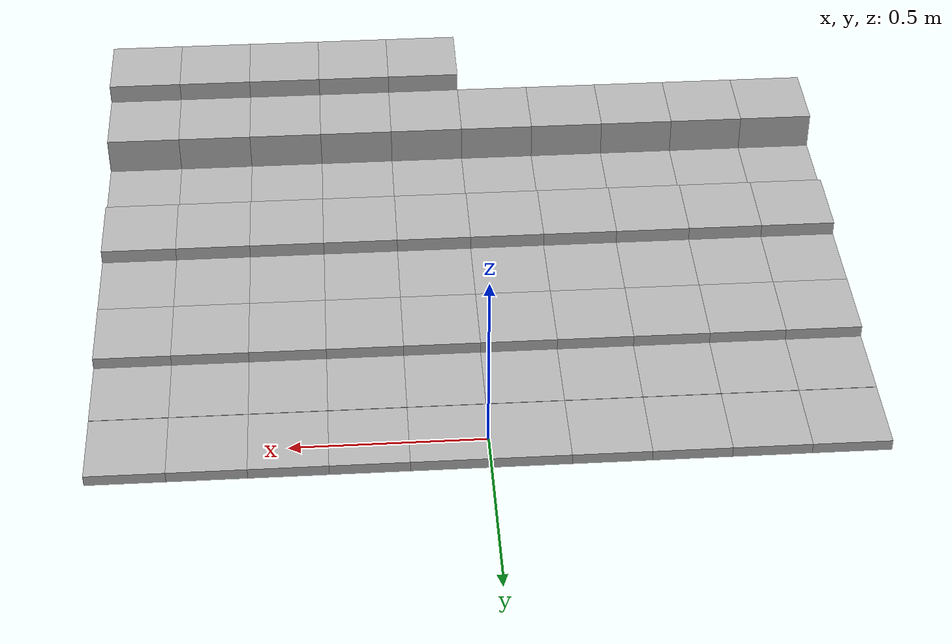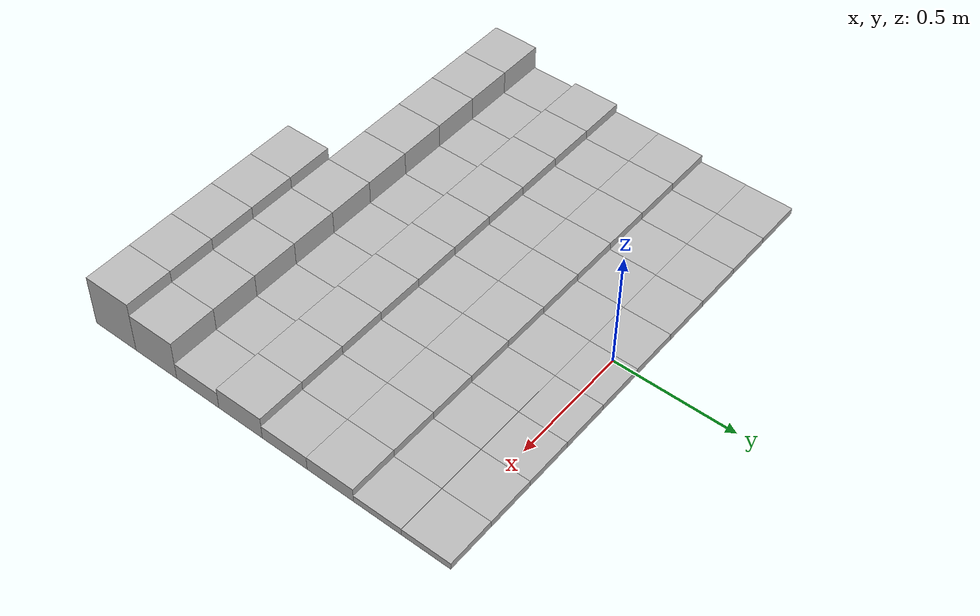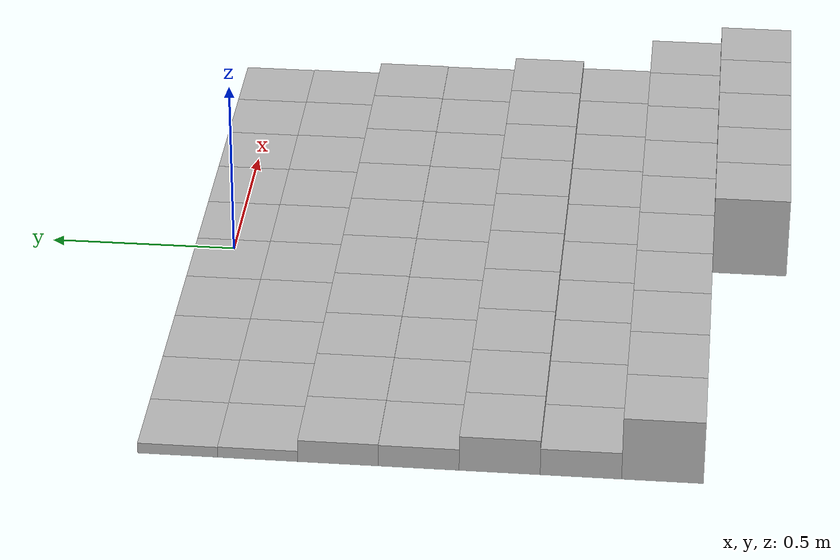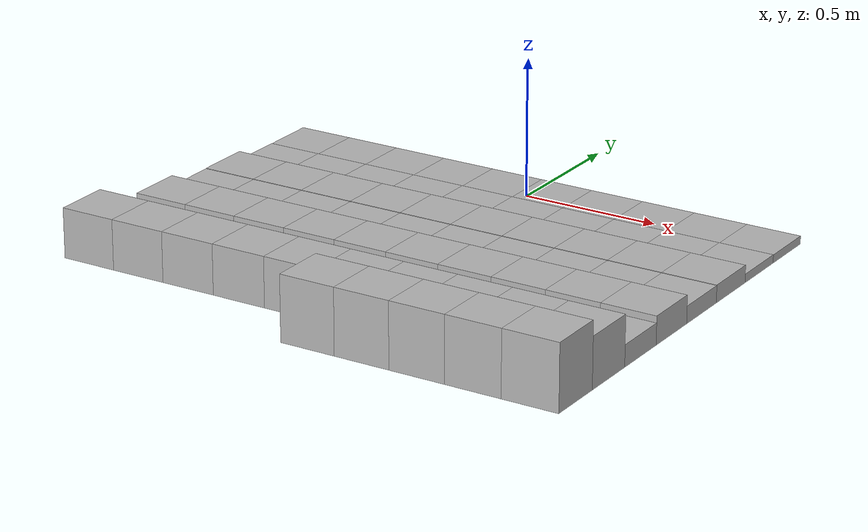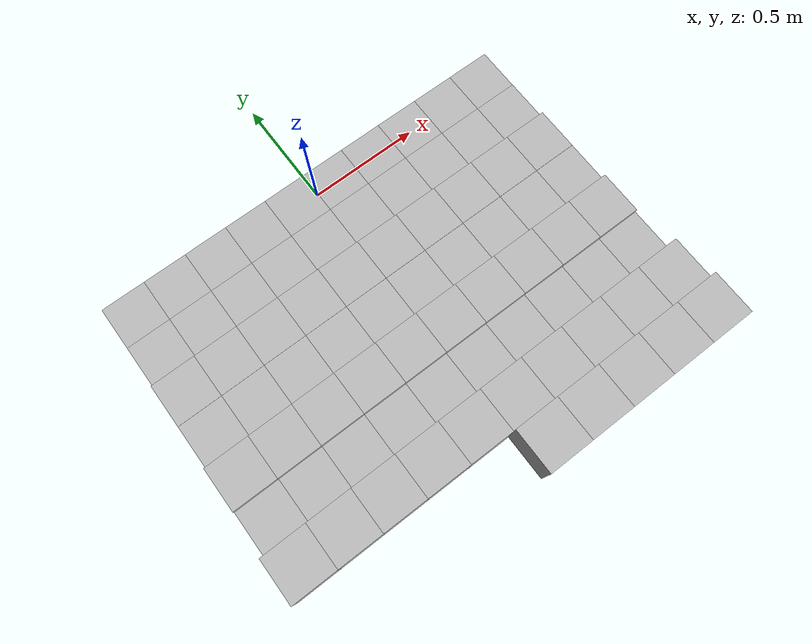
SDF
<sdf version="1.6">
 <model name="Terrain">
  <static>true</static>
  <link name="box_0_0">
   <pose>-0.9 0.0 0.0147487648978 0 0 0</pose>
   <inertial>
    <mass>1.0</mass>
    <inertia><ixx>0.0</ixx><ixy>0.0</ixy><ixz>0.0</ixz><iyy>0.0</iyy><iyz>0.0</iyz><izz>0.0</izz></inertia>
   </inertial>
   <collision name="collision"><geometry><box><size>0.2 0.2 0.0294975297957</size></box></geometry></collision>
   <visual name="visual"><geometry><box><size>0.2 0.2 0.0294975297957</size></box></geometry></visual>
  </link>
  <link name="box_0_1">
   <pose>-0.7 0.0 0.0147487648978 0 0 0</pose>
   <inertial>
    <mass>1.0</mass>
    <inertia><ixx>0.0</ixx><ixy>0.0</ixy><ixz>0.0</ixz><iyy>0.0</iyy><iyz>0.0</iyz><izz>0.0</izz></inertia>
   </inertial>
   <collision name="collision"><geometry><box><size>0.2 0.2 0.0294975297957</size></box></geometry></collision>
   <visual name="visual"><geometry><box><size>0.2 0.2 0.0294975297957</size></box></geometry></visual>
  </link>
  <link name="box_0_2">
   <pose>-0.5 0.0 0.0147487648978 0 0 0</pose>
   <inertial>
    <mass>1.0</mass>
    <inertia><ixx>0.0</ixx><ixy>0.0</ixy><ixz>0.0</ixz><iyy>0.0</iyy><iyz>0.0</iyz><izz>0.0</izz></inertia>
   </inertial>
   <collision name="collision"><geometry><box><size>0.2 0.2 0.0294975297957</size></box></geometry></collision>
   <visual name="visual"><geometry><box><size>0.2 0.2 0.0294975297957</size></box></geometry></visual>
  </link>
  <link name="box_0_3">
   <pose>-0.3 0.0 0.0147487648978 0 0 0</pose>
   <inertial>
    <mass>1.0</mass>
    <inertia><ixx>0.0</ixx><ixy>0.0</ixy><ixz>0.0</ixz><iyy>0.0</iyy><iyz>0.0</iyz><izz>0.0</izz></inertia>
   </inertial>
   <collision name="collision"><geometry><box><size>0.2 0.2 0.0294975297957</size></box></geometry></collision>
   <visual name="visual"><geometry><box><size>0.2 0.2 0.0294975297957</size></box></geometry></visual>
  </link>
  <link name="box_0_4">
   <pose>-0.1 0.0 0.0147487648978 0 0 0</pose>
   <inertial>
    <mass>1.0</mass>
    <inertia><ixx>0.0</ixx><ixy>0.0</ixy><ixz>0.0</ixz><iyy>0.0</iyy><iyz>0.0</iyz><izz>0.0</izz></inertia>
   </inertial>
   <collision name="collision"><geometry><box><size>0.2 0.2 0.0294975297957</size></box></geometry></collision>
   <visual name="visual"><geometry><box><size>0.2 0.2 0.0294975297957</size></box></geometry></visual>
  </link>
  <link name="box_0_5">
   <pose>0.1 0.0 0.0147487648978 0 0 0</pose>
   <inertial>
    <mass>1.0</mass>
    <inertia><ixx>0.0</ixx><ixy>0.0</ixy><ixz>0.0</ixz><iyy>0.0</iyy><iyz>0.0</iyz><izz>0.0</izz></inertia>
   </inertial>
   <collision name="collision"><geometry><box><size>0.2 0.2 0.0294975297957</size></box></geometry></collision>
   <visual name="visual"><geometry><box><size>0.2 0.2 0.0294975297957</size></box></geometry></visual>
  </link>
  <link name="box_0_6">
   <pose>0.3 0.0 0.0147487648978 0 0 0</pose>
   <inertial>
    <mass>1.0</mass>
    <inertia><ixx>0.0</ixx><ixy>0.0</ixy><ixz>0.0</ixz><iyy>0.0</iyy><iyz>0.0</iyz><izz>0.0</izz></inertia>
   </inertial>
   <collision name="collision"><geometry><box><size>0.2 0.2 0.0294975297957</size></box></geometry></collision>
   <visual name="visual"><geometry><box><size>0.2 0.2 0.0294975297957</size></box></geometry></visual>
  </link>
  <link name="box_0_7">
   <pose>0.5 0.0 0.0147487648978 0 0 0</pose>
   <inertial>
    <mass>1.0</mass>
    <inertia><ixx>0.0</ixx><ixy>0.0</ixy><ixz>0.0</ixz><iyy>0.0</iyy><iyz>0.0</iyz><izz>0.0</izz></inertia>
   </inertial>
   <collision name="collision"><geometry><box><size>0.2 0.2 0.0294975297957</size></box></geometry></collision>
   <visual name="visual"><geometry><box><size>0.2 0.2 0.0294975297957</size></box></geometry></visual>
  </link>
  <link name="box_0_8">
   <pose>0.7 0.0 0.0147487648978 0 0 0</pose>
   <inertial>
    <mass>1.0</mass>
    <inertia><ixx>0.0</ixx><ixy>0.0</ixy><ixz>0.0</ixz><iyy>0.0</iyy><iyz>0.0</iyz><izz>0.0</izz></inertia>
   </inertial>
   <collision name="collision"><geometry><box><size>0.2 0.2 0.0294975297957</size></box></geometry></collision>
   <visual name="visual"><geometry><box><size>0.2 0.2 0.0294975297957</size></box></geometry></visual>
  </link>
  <link name="box_0_9">
   <pose>0.9 0.0 0.0147487648978 0 0 0</pose>
   <inertial>
    <mass>1.0</mass>
    <inertia><ixx>0.0</ixx><ixy>0.0</ixy><ixz>0.0</ixz><iyy>0.0</iyy><iyz>0.0</iyz><izz>0.0</izz></inertia>
   </inertial>
   <collision name="collision"><geometry><box><size>0.2 0.2 0.0294975297957</size></box></geometry></collision>
   <visual name="visual"><geometry><box><size>0.2 0.2 0.0294975297957</size></box></geometry></visual>
  </link>
  <link name="box_1_0">
   <pose>-0.9 -0.2 0.0152892872254 0 0 0</pose>
   <inertial>
    <mass>1.0</mass>
    <inertia><ixx>0.0</ixx><ixy>0.0</ixy><ixz>0.0</ixz><iyy>0.0</iyy><iyz>0.0</iyz><izz>0.0</izz></inertia>
   </inertial>
   <collision name="collision"><geometry><box><size>0.2 0.2 0.0305785744509</size></box></geometry></collision>
   <visual name="visual"><geometry><box><size>0.2 0.2 0.0305785744509</size></box></geometry></visual>
  </link>
  <link name="box_1_1">
   <pose>-0.7 -0.2 0.0152892872254 0 0 0</pose>
   <inertial>
    <mass>1.0</mass>
    <inertia><ixx>0.0</ixx><ixy>0.0</ixy><ixz>0.0</ixz><iyy>0.0</iyy><iyz>0.0</iyz><izz>0.0</izz></inertia>
   </inertial>
   <collision name="collision"><geometry><box><size>0.2 0.2 0.0305785744509</size></box></geometry></collision>
   <visual name="visual"><geometry><box><size>0.2 0.2 0.0305785744509</size></box></geometry></visual>
  </link>
  <link name="box_1_2">
   <pose>-0.5 -0.2 0.0152892872254 0 0 0</pose>
   <inertial>
    <mass>1.0</mass>
    <inertia><ixx>0.0</ixx><ixy>0.0</ixy><ixz>0.0</ixz><iyy>0.0</iyy><iyz>0.0</iyz><izz>0.0</izz></inertia>
   </inertial>
   <collision name="collision"><geometry><box><size>0.2 0.2 0.0305785744509</size></box></geometry></collision>
   <visual name="visual"><geometry><box><size>0.2 0.2 0.0305785744509</size></box></geometry></visual>
  </link>
  <link name="box_1_3">
   <pose>-0.3 -0.2 0.0152892872254 0 0 0</pose>
   <inertial>
    <mass>1.0</mass>
    <inertia><ixx>0.0</ixx><ixy>0.0</ixy><ixz>0.0</ixz><iyy>0.0</iyy><iyz>0.0</iyz><izz>0.0</izz></inertia>
   </inertial>
   <collision name="collision"><geometry><box><size>0.2 0.2 0.0305785744509</size></box></geometry></collision>
   <visual name="visual"><geometry><box><size>0.2 0.2 0.0305785744509</size></box></geometry></visual>
  </link>
  <link name="box_1_4">
   <pose>-0.1 -0.2 0.0152892872254 0 0 0</pose>
   <inertial>
    <mass>1.0</mass>
    <inertia><ixx>0.0</ixx><ixy>0.0</ixy><ixz>0.0</ixz><iyy>0.0</iyy><iyz>0.0</iyz><izz>0.0</izz></inertia>
   </inertial>
   <collision name="collision"><geometry><box><size>0.2 0.2 0.0305785744509</size></box></geometry></collision>
   <visual name="visual"><geometry><box><size>0.2 0.2 0.0305785744509</size></box></geometry></visual>
  </link>
  <link name="box_1_5">
   <pose>0.1 -0.2 0.0152892872254 0 0 0</pose>
   <inertial>
    <mass>1.0</mass>
    <inertia><ixx>0.0</ixx><ixy>0.0</ixy><ixz>0.0</ixz><iyy>0.0</iyy><iyz>0.0</iyz><izz>0.0</izz></inertia>
   </inertial>
   <collision name="collision"><geometry><box><size>0.2 0.2 0.0305785744509</size></box></geometry></collision>
   <visual name="visual"><geometry><box><size>0.2 0.2 0.0305785744509</size></box></geometry></visual>
  </link>
  <link name="box_1_6">
   <pose>0.3 -0.2 0.0152892872254 0 0 0</pose>
   <inertial>
    <mass>1.0</mass>
    <inertia><ixx>0.0</ixx><ixy>0.0</ixy><ixz>0.0</ixz><iyy>0.0</iyy><iyz>0.0</iyz><izz>0.0</izz></inertia>
   </inertial>
   <collision name="collision"><geometry><box><size>0.2 0.2 0.0305785744509</size></box></geometry></collision>
   <visual name="visual"><geometry><box><size>0.2 0.2 0.0305785744509</size></box></geometry></visual>
  </link>
  <link name="box_1_7">
   <pose>0.5 -0.2 0.0152892872254 0 0 0</pose>
   <inertial>
    <mass>1.0</mass>
    <inertia><ixx>0.0</ixx><ixy>0.0</ixy><ixz>0.0</ixz><iyy>0.0</iyy><iyz>0.0</iyz><izz>0.0</izz></inertia>
   </inertial>
   <collision name="collision"><geometry><box><size>0.2 0.2 0.0305785744509</size></box></geometry></collision>
   <visual name="visual"><geometry><box><size>0.2 0.2 0.0305785744509</size></box></geometry></visual>
  </link>
  <link name="box_1_8">
   <pose>0.7 -0.2 0.0152892872254 0 0 0</pose>
   <inertial>
    <mass>1.0</mass>
    <inertia><ixx>0.0</ixx><ixy>0.0</ixy><ixz>0.0</ixz><iyy>0.0</iyy><iyz>0.0</iyz><izz>0.0</izz></inertia>
   </inertial>
   <collision name="collision"><geometry><box><size>0.2 0.2 0.0305785744509</size></box></geometry></collision>
   <visual name="visual"><geometry><box><size>0.2 0.2 0.0305785744509</size></box></geometry></visual>
  </link>
  <link name="box_1_9">
   <pose>0.9 -0.2 0.0152892872254 0 0 0</pose>
   <inertial>
    <mass>1.0</mass>
    <inertia><ixx>0.0</ixx><ixy>0.0</ixy><ixz>0.0</ixz><iyy>0.0</iyy><iyz>0.0</iyz><izz>0.0</izz></inertia>
   </inertial>
   <collision name="collision"><geometry><box><size>0.2 0.2 0.0305785744509</size></box></geometry></collision>
   <visual name="visual"><geometry><box><size>0.2 0.2 0.0305785744509</size></box></geometry></visual>
  </link>
  <link name="box_2_0">
   <pose>-0.9 -0.4 0.0312919941893 0 0 0</pose>
   <inertial>
    <mass>1.0</mass>
    <inertia><ixx>0.0</ixx><ixy>0.0</ixy><ixz>0.0</ixz><iyy>0.0</iyy><iyz>0.0</iyz><izz>0.0</izz></inertia>
   </inertial>
   <collision name="collision"><geometry><box><size>0.2 0.2 0.0625839883787</size></box></geometry></collision>
   <visual name="visual"><geometry><box><size>0.2 0.2 0.0625839883787</size></box></geometry></visual>
  </link>
  <link name="box_2_1">
   <pose>-0.7 -0.4 0.0312919941893 0 0 0</pose>
   <inertial>
    <mass>1.0</mass>
    <inertia><ixx>0.0</ixx><ixy>0.0</ixy><ixz>0.0</ixz><iyy>0.0</iyy><iyz>0.0</iyz><izz>0.0</izz></inertia>
   </inertial>
   <collision name="collision"><geometry><box><size>0.2 0.2 0.0625839883787</size></box></geometry></collision>
   <visual name="visual"><geometry><box><size>0.2 0.2 0.0625839883787</size></box></geometry></visual>
  </link>
  <link name="box_2_2">
   <pose>-0.5 -0.4 0.0312919941893 0 0 0</pose>
   <inertial>
    <mass>1.0</mass>
    <inertia><ixx>0.0</ixx><ixy>0.0</ixy><ixz>0.0</ixz><iyy>0.0</iyy><iyz>0.0</iyz><izz>0.0</izz></inertia>
   </inertial>
   <collision name="collision"><geometry><box><size>0.2 0.2 0.0625839883787</size></box></geometry></collision>
   <visual name="visual"><geometry><box><size>0.2 0.2 0.0625839883787</size></box></geometry></visual>
  </link>
  <link name="box_2_3">
   <pose>-0.3 -0.4 0.0312919941893 0 0 0</pose>
   <inertial>
    <mass>1.0</mass>
    <inertia><ixx>0.0</ixx><ixy>0.0</ixy><ixz>0.0</ixz><iyy>0.0</iyy><iyz>0.0</iyz><izz>0.0</izz></inertia>
   </inertial>
   <collision name="collision"><geometry><box><size>0.2 0.2 0.0625839883787</size></box></geometry></collision>
   <visual name="visual"><geometry><box><size>0.2 0.2 0.0625839883787</size></box></geometry></visual>
  </link>
  <link name="box_2_4">
   <pose>-0.1 -0.4 0.0312919941893 0 0 0</pose>
   <inertial>
    <mass>1.0</mass>
    <inertia><ixx>0.0</ixx><ixy>0.0</ixy><ixz>0.0</ixz><iyy>0.0</iyy><iyz>0.0</iyz><izz>0.0</izz></inertia>
   </inertial>
   <collision name="collision"><geometry><box><size>0.2 0.2 0.0625839883787</size></box></geometry></collision>
   <visual name="visual"><geometry><box><size>0.2 0.2 0.0625839883787</size></box></geometry></visual>
  </link>
  <link name="box_2_5">
   <pose>0.1 -0.4 0.0312919941893 0 0 0</pose>
   <inertial>
    <mass>1.0</mass>
    <inertia><ixx>0.0</ixx><ixy>0.0</ixy><ixz>0.0</ixz><iyy>0.0</iyy><iyz>0.0</iyz><izz>0.0</izz></inertia>
   </inertial>
   <collision name="collision"><geometry><box><size>0.2 0.2 0.0625839883787</size></box></geometry></collision>
   <visual name="visual"><geometry><box><size>0.2 0.2 0.0625839883787</size></box></geometry></visual>
  </link>
  <link name="box_2_6">
   <pose>0.3 -0.4 0.0312919941893 0 0 0</pose>
   <inertial>
    <mass>1.0</mass>
    <inertia><ixx>0.0</ixx><ixy>0.0</ixy><ixz>0.0</ixz><iyy>0.0</iyy><iyz>0.0</iyz><izz>0.0</izz></inertia>
   </inertial>
   <collision name="collision"><geometry><box><size>0.2 0.2 0.0625839883787</size></box></geometry></collision>
   <visual name="visual"><geometry><box><size>0.2 0.2 0.0625839883787</size></box></geometry></visual>
  </link>
  <link name="box_2_7">
   <pose>0.5 -0.4 0.0312919941893 0 0 0</pose>
   <inertial>
    <mass>1.0</mass>
    <inertia><ixx>0.0</ixx><ixy>0.0</ixy><ixz>0.0</ixz><iyy>0.0</iyy><iyz>0.0</iyz><izz>0.0</izz></inertia>
   </inertial>
   <collision name="collision"><geometry><box><size>0.2 0.2 0.0625839883787</size></box></geometry></collision>
   <visual name="visual"><geometry><box><size>0.2 0.2 0.0625839883787</size></box></geometry></visual>
  </link>
  <link name="box_2_8">
   <pose>0.7 -0.4 0.0312919941893 0 0 0</pose>
   <inertial>
    <mass>1.0</mass>
    <inertia><ixx>0.0</ixx><ixy>0.0</ixy><ixz>0.0</ixz><iyy>0.0</iyy><iyz>0.0</iyz><izz>0.0</izz></inertia>
   </inertial>
   <collision name="collision"><geometry><box><size>0.2 0.2 0.0625839883787</size></box></geometry></collision>
   <visual name="visual"><geometry><box><size>0.2 0.2 0.0625839883787</size></box></geometry></visual>
  </link>
  <link name="box_2_9">
   <pose>0.9 -0.4 0.0312919941893 0 0 0</pose>
   <inertial>
    <mass>1.0</mass>
    <inertia><ixx>0.0</ixx><ixy>0.0</ixy><ixz>0.0</ixz><iyy>0.0</iyy><iyz>0.0</iyz><izz>0.0</izz></inertia>
   </inertial>
   <collision name="collision"><geometry><box><size>0.2 0.2 0.0625839883787</size></box></geometry></collision>
   <visual name="visual"><geometry><box><size>0.2 0.2 0.0625839883787</size></box></geometry></visual>
  </link>
  <link name="box_3_0">
   <pose>-0.9 -0.6 0.030541739035 0 0 0</pose>
   <inertial>
    <mass>1.0</mass>
    <inertia><ixx>0.0</ixx><ixy>0.0</ixy><ixz>0.0</ixz><iyy>0.0</iyy><iyz>0.0</iyz><izz>0.0</izz></inertia>
   </inertial>
   <collision name="collision"><geometry><box><size>0.2 0.2 0.0610834780701</size></box></geometry></collision>
   <visual name="visual"><geometry><box><size>0.2 0.2 0.0610834780701</size></box></geometry></visual>
  </link>
  <link name="box_3_1">
   <pose>-0.7 -0.6 0.030541739035 0 0 0</pose>
   <inertial>
    <mass>1.0</mass>
    <inertia><ixx>0.0</ixx><ixy>0.0</ixy><ixz>0.0</ixz><iyy>0.0</iyy><iyz>0.0</iyz><izz>0.0</izz></inertia>
   </inertial>
   <collision name="collision"><geometry><box><size>0.2 0.2 0.0610834780701</size></box></geometry></collision>
   <visual name="visual"><geometry><box><size>0.2 0.2 0.0610834780701</size></box></geometry></visual>
  </link>
  <link name="box_3_2">
   <pose>-0.5 -0.6 0.030541739035 0 0 0</pose>
   <inertial>
    <mass>1.0</mass>
    <inertia><ixx>0.0</ixx><ixy>0.0</ixy><ixz>0.0</ixz><iyy>0.0</iyy><iyz>0.0</iyz><izz>0.0</izz></inertia>
   </inertial>
   <collision name="collision"><geometry><box><size>0.2 0.2 0.0610834780701</size></box></geometry></collision>
   <visual name="visual"><geometry><box><size>0.2 0.2 0.0610834780701</size></box></geometry></visual>
  </link>
  <link name="box_3_3">
   <pose>-0.3 -0.6 0.030541739035 0 0 0</pose>
   <inertial>
    <mass>1.0</mass>
    <inertia><ixx>0.0</ixx><ixy>0.0</ixy><ixz>0.0</ixz><iyy>0.0</iyy><iyz>0.0</iyz><izz>0.0</izz></inertia>
   </inertial>
   <collision name="collision"><geometry><box><size>0.2 0.2 0.0610834780701</size></box></geometry></collision>
   <visual name="visual"><geometry><box><size>0.2 0.2 0.0610834780701</size></box></geometry></visual>
  </link>
  <link name="box_3_4">
   <pose>-0.1 -0.6 0.030541739035 0 0 0</pose>
   <inertial>
    <mass>1.0</mass>
    <inertia><ixx>0.0</ixx><ixy>0.0</ixy><ixz>0.0</ixz><iyy>0.0</iyy><iyz>0.0</iyz><izz>0.0</izz></inertia>
   </inertial>
   <collision name="collision"><geometry><box><size>0.2 0.2 0.0610834780701</size></box></geometry></collision>
   <visual name="visual"><geometry><box><size>0.2 0.2 0.0610834780701</size></box></geometry></visual>
  </link>
  <link name="box_3_5">
   <pose>0.1 -0.6 0.030541739035 0 0 0</pose>
   <inertial>
    <mass>1.0</mass>
    <inertia><ixx>0.0</ixx><ixy>0.0</ixy><ixz>0.0</ixz><iyy>0.0</iyy><iyz>0.0</iyz><izz>0.0</izz></inertia>
   </inertial>
   <collision name="collision"><geometry><box><size>0.2 0.2 0.0610834780701</size></box></geometry></collision>
   <visual name="visual"><geometry><box><size>0.2 0.2 0.0610834780701</size></box></geometry></visual>
  </link>
  <link name="box_3_6">
   <pose>0.3 -0.6 0.030541739035 0 0 0</pose>
   <inertial>
    <mass>1.0</mass>
    <inertia><ixx>0.0</ixx><ixy>0.0</ixy><ixz>0.0</ixz><iyy>0.0</iyy><iyz>0.0</iyz><izz>0.0</izz></inertia>
   </inertial>
   <collision name="collision"><geometry><box><size>0.2 0.2 0.0610834780701</size></box></geometry></collision>
   <visual name="visual"><geometry><box><size>0.2 0.2 0.0610834780701</size></box></geometry></visual>
  </link>
  <link name="box_3_7">
   <pose>0.5 -0.6 0.030541739035 0 0 0</pose>
   <inertial>
    <mass>1.0</mass>
    <inertia><ixx>0.0</ixx><ixy>0.0</ixy><ixz>0.0</ixz><iyy>0.0</iyy><iyz>0.0</iyz><izz>0.0</izz></inertia>
   </inertial>
   <collision name="collision"><geometry><box><size>0.2 0.2 0.0610834780701</size></box></geometry></collision>
   <visual name="visual"><geometry><box><size>0.2 0.2 0.0610834780701</size></box></geometry></visual>
  </link>
  <link name="box_3_8">
   <pose>0.7 -0.6 0.030541739035 0 0 0</pose>
   <inertial>
    <mass>1.0</mass>
    <inertia><ixx>0.0</ixx><ixy>0.0</ixy><ixz>0.0</ixz><iyy>0.0</iyy><iyz>0.0</iyz><izz>0.0</izz></inertia>
   </inertial>
   <collision name="collision"><geometry><box><size>0.2 0.2 0.0610834780701</size></box></geometry></collision>
   <visual name="visual"><geometry><box><size>0.2 0.2 0.0610834780701</size></box></geometry></visual>
  </link>
  <link name="box_3_9">
   <pose>0.9 -0.6 0.030541739035 0 0 0</pose>
   <inertial>
    <mass>1.0</mass>
    <inertia><ixx>0.0</ixx><ixy>0.0</ixy><ixz>0.0</ixz><iyy>0.0</iyy><iyz>0.0</iyz><izz>0.0</izz></inertia>
   </inertial>
   <collision name="collision"><geometry><box><size>0.2 0.2 0.0610834780701</size></box></geometry></collision>
   <visual name="visual"><geometry><box><size>0.2 0.2 0.0610834780701</size></box></geometry></visual>
  </link>
  <link name="box_4_0">
   <pose>-0.9 -0.8 0.049643635645 0 0 0</pose>
   <inertial>
    <mass>1.0</mass>
    <inertia><ixx>0.0</ixx><ixy>0.0</ixy><ixz>0.0</ixz><iyy>0.0</iyy><iyz>0.0</iyz><izz>0.0</izz></inertia>
   </inertial>
   <collision name="collision"><geometry><box><size>0.2 0.2 0.0992872712901</size></box></geometry></collision>
   <visual name="visual"><geometry><box><size>0.2 0.2 0.0992872712901</size></box></geometry></visual>
  </link>
  <link name="box_4_1">
   <pose>-0.7 -0.8 0.049643635645 0 0 0</pose>
   <inertial>
    <mass>1.0</mass>
    <inertia><ixx>0.0</ixx><ixy>0.0</ixy><ixz>0.0</ixz><iyy>0.0</iyy><iyz>0.0</iyz><izz>0.0</izz></inertia>
   </inertial>
   <collision name="collision"><geometry><box><size>0.2 0.2 0.0992872712901</size></box></geometry></collision>
   <visual name="visual"><geometry><box><size>0.2 0.2 0.0992872712901</size></box></geometry></visual>
  </link>
  <link name="box_4_2">
   <pose>-0.5 -0.8 0.049643635645 0 0 0</pose>
   <inertial>
    <mass>1.0</mass>
    <inertia><ixx>0.0</ixx><ixy>0.0</ixy><ixz>0.0</ixz><iyy>0.0</iyy><iyz>0.0</iyz><izz>0.0</izz></inertia>
   </inertial>
   <collision name="collision"><geometry><box><size>0.2 0.2 0.0992872712901</size></box></geometry></collision>
   <visual name="visual"><geometry><box><size>0.2 0.2 0.0992872712901</size></box></geometry></visual>
  </link>
  <link name="box_4_3">
   <pose>-0.3 -0.8 0.049643635645 0 0 0</pose>
   <inertial>
    <mass>1.0</mass>
    <inertia><ixx>0.0</ixx><ixy>0.0</ixy><ixz>0.0</ixz><iyy>0.0</iyy><iyz>0.0</iyz><izz>0.0</izz></inertia>
   </inertial>
   <collision name="collision"><geometry><box><size>0.2 0.2 0.0992872712901</size></box></geometry></collision>
   <visual name="visual"><geometry><box><size>0.2 0.2 0.0992872712901</size></box></geometry></visual>
  </link>
  <link name="box_4_4">
   <pose>-0.1 -0.8 0.049643635645 0 0 0</pose>
   <inertial>
    <mass>1.0</mass>
    <inertia><ixx>0.0</ixx><ixy>0.0</ixy><ixz>0.0</ixz><iyy>0.0</iyy><iyz>0.0</iyz><izz>0.0</izz></inertia>
   </inertial>
   <collision name="collision"><geometry><box><size>0.2 0.2 0.0992872712901</size></box></geometry></collision>
   <visual name="visual"><geometry><box><size>0.2 0.2 0.0992872712901</size></box></geometry></visual>
  </link>
  <link name="box_4_5">
   <pose>0.1 -0.8 0.049643635645 0 0 0</pose>
   <inertial>
    <mass>1.0</mass>
    <inertia><ixx>0.0</ixx><ixy>0.0</ixy><ixz>0.0</ixz><iyy>0.0</iyy><iyz>0.0</iyz><izz>0.0</izz></inertia>
   </inertial>
   <collision name="collision"><geometry><box><size>0.2 0.2 0.0992872712901</size></box></geometry></collision>
   <visual name="visual"><geometry><box><size>0.2 0.2 0.0992872712901</size></box></geometry></visual>
  </link>
  <link name="box_4_6">
   <pose>0.3 -0.8 0.049643635645 0 0 0</pose>
   <inertial>
    <mass>1.0</mass>
    <inertia><ixx>0.0</ixx><ixy>0.0</ixy><ixz>0.0</ixz><iyy>0.0</iyy><iyz>0.0</iyz><izz>0.0</izz></inertia>
   </inertial>
   <collision name="collision"><geometry><box><size>0.2 0.2 0.0992872712901</size></box></geometry></collision>
   <visual name="visual"><geometry><box><size>0.2 0.2 0.0992872712901</size></box></geometry></visual>
  </link>
  <link name="box_4_7">
   <pose>0.5 -0.8 0.049643635645 0 0 0</pose>
   <inertial>
    <mass>1.0</mass>
    <inertia><ixx>0.0</ixx><ixy>0.0</ixy><ixz>0.0</ixz><iyy>0.0</iyy><iyz>0.0</iyz><izz>0.0</izz></inertia>
   </inertial>
   <collision name="collision"><geometry><box><size>0.2 0.2 0.0992872712901</size></box></geometry></collision>
   <visual name="visual"><geometry><box><size>0.2 0.2 0.0992872712901</size></box></geometry></visual>
  </link>
  <link name="box_4_8">
   <pose>0.7 -0.8 0.049643635645 0 0 0</pose>
   <inertial>
    <mass>1.0</mass>
    <inertia><ixx>0.0</ixx><ixy>0.0</ixy><ixz>0.0</ixz><iyy>0.0</iyy><iyz>0.0</iyz><izz>0.0</izz></inertia>
   </inertial>
   <collision name="collision"><geometry><box><size>0.2 0.2 0.0992872712901</size></box></geometry></collision>
   <visual name="visual"><geometry><box><size>0.2 0.2 0.0992872712901</size></box></geometry></visual>
  </link>
  <link name="box_4_9">
   <pose>0.9 -0.8 0.049643635645 0 0 0</pose>
   <inertial>
    <mass>1.0</mass>
    <inertia><ixx>0.0</ixx><ixy>0.0</ixy><ixz>0.0</ixz><iyy>0.0</iyy><iyz>0.0</iyz><izz>0.0</izz></inertia>
   </inertial>
   <collision name="collision"><geometry><box><size>0.2 0.2 0.0992872712901</size></box></geometry></collision>
   <visual name="visual"><geometry><box><size>0.2 0.2 0.0992872712901</size></box></geometry></visual>
  </link>
  <link name="box_5_0">
   <pose>-0.9 -1.0 0.0378821202081 0 0 0</pose>
   <inertial>
    <mass>1.0</mass>
    <inertia><ixx>0.0</ixx><ixy>0.0</ixy><ixz>0.0</ixz><iyy>0.0</iyy><iyz>0.0</iyz><izz>0.0</izz></inertia>
   </inertial>
   <collision name="collision"><geometry><box><size>0.2 0.2 0.0757642404163</size></box></geometry></collision>
   <visual name="visual"><geometry><box><size>0.2 0.2 0.0757642404163</size></box></geometry></visual>
  </link>
  <link name="box_5_1">
   <pose>-0.7 -1.0 0.0378821202081 0 0 0</pose>
   <inertial>
    <mass>1.0</mass>
    <inertia><ixx>0.0</ixx><ixy>0.0</ixy><ixz>0.0</ixz><iyy>0.0</iyy><iyz>0.0</iyz><izz>0.0</izz></inertia>
   </inertial>
   <collision name="collision"><geometry><box><size>0.2 0.2 0.0757642404163</size></box></geometry></collision>
   <visual name="visual"><geometry><box><size>0.2 0.2 0.0757642404163</size></box></geometry></visual>
  </link>
  <link name="box_5_2">
   <pose>-0.5 -1.0 0.0378821202081 0 0 0</pose>
   <inertial>
    <mass>1.0</mass>
    <inertia><ixx>0.0</ixx><ixy>0.0</ixy><ixz>0.0</ixz><iyy>0.0</iyy><iyz>0.0</iyz><izz>0.0</izz></inertia>
   </inertial>
   <collision name="collision"><geometry><box><size>0.2 0.2 0.0757642404163</size></box></geometry></collision>
   <visual name="visual"><geometry><box><size>0.2 0.2 0.0757642404163</size></box></geometry></visual>
  </link>
  <link name="box_5_3">
   <pose>-0.3 -1.0 0.0378821202081 0 0 0</pose>
   <inertial>
    <mass>1.0</mass>
    <inertia><ixx>0.0</ixx><ixy>0.0</ixy><ixz>0.0</ixz><iyy>0.0</iyy><iyz>0.0</iyz><izz>0.0</izz></inertia>
   </inertial>
   <collision name="collision"><geometry><box><size>0.2 0.2 0.0757642404163</size></box></geometry></collision>
   <visual name="visual"><geometry><box><size>0.2 0.2 0.0757642404163</size></box></geometry></visual>
  </link>
  <link name="box_5_4">
   <pose>-0.1 -1.0 0.0378821202081 0 0 0</pose>
   <inertial>
    <mass>1.0</mass>
    <inertia><ixx>0.0</ixx><ixy>0.0</ixy><ixz>0.0</ixz><iyy>0.0</iyy><iyz>0.0</iyz><izz>0.0</izz></inertia>
   </inertial>
   <collision name="collision"><geometry><box><size>0.2 0.2 0.0757642404163</size></box></geometry></collision>
   <visual name="visual"><geometry><box><size>0.2 0.2 0.0757642404163</size></box></geometry></visual>
  </link>
  <link name="box_5_5">
   <pose>0.1 -1.0 0.0378821202081 0 0 0</pose>
   <inertial>
    <mass>1.0</mass>
    <inertia><ixx>0.0</ixx><ixy>0.0</ixy><ixz>0.0</ixz><iyy>0.0</iyy><iyz>0.0</iyz><izz>0.0</izz></inertia>
   </inertial>
   <collision name="collision"><geometry><box><size>0.2 0.2 0.0757642404163</size></box></geometry></collision>
   <visual name="visual"><geometry><box><size>0.2 0.2 0.0757642404163</size></box></geometry></visual>
  </link>
  <link name="box_5_6">
   <pose>0.3 -1.0 0.0378821202081 0 0 0</pose>
   <inertial>
    <mass>1.0</mass>
    <inertia><ixx>0.0</ixx><ixy>0.0</ixy><ixz>0.0</ixz><iyy>0.0</iyy><iyz>0.0</iyz><izz>0.0</izz></inertia>
   </inertial>
   <collision name="collision"><geometry><box><size>0.2 0.2 0.0757642404163</size></box></geometry></collision>
   <visual name="visual"><geometry><box><size>0.2 0.2 0.0757642404163</size></box></geometry></visual>
  </link>
  <link name="box_5_7">
   <pose>0.5 -1.0 0.0378821202081 0 0 0</pose>
   <inertial>
    <mass>1.0</mass>
    <inertia><ixx>0.0</ixx><ixy>0.0</ixy><ixz>0.0</ixz><iyy>0.0</iyy><iyz>0.0</iyz><izz>0.0</izz></inertia>
   </inertial>
   <collision name="collision"><geometry><box><size>0.2 0.2 0.0757642404163</size></box></geometry></collision>
   <visual name="visual"><geometry><box><size>0.2 0.2 0.0757642404163</size></box></geometry></visual>
  </link>
  <link name="box_5_8">
   <pose>0.7 -1.0 0.0378821202081 0 0 0</pose>
   <inertial>
    <mass>1.0</mass>
    <inertia><ixx>0.0</ixx><ixy>0.0</ixy><ixz>0.0</ixz><iyy>0.0</iyy><iyz>0.0</iyz><izz>0.0</izz></inertia>
   </inertial>
   <collision name="collision"><geometry><box><size>0.2 0.2 0.0757642404163</size></box></geometry></collision>
   <visual name="visual"><geometry><box><size>0.2 0.2 0.0757642404163</size></box></geometry></visual>
  </link>
  <link name="box_5_9">
   <pose>0.9 -1.0 0.0378821202081 0 0 0</pose>
   <inertial>
    <mass>1.0</mass>
    <inertia><ixx>0.0</ixx><ixy>0.0</ixy><ixz>0.0</ixz><iyy>0.0</iyy><iyz>0.0</iyz><izz>0.0</izz></inertia>
   </inertial>
   <collision name="collision"><geometry><box><size>0.2 0.2 0.0757642404163</size></box></geometry></collision>
   <visual name="visual"><geometry><box><size>0.2 0.2 0.0757642404163</size></box></geometry></visual>
  </link>
  <link name="box_6_0">
   <pose>-0.9 -1.2 0.0887667179595 0 0 0</pose>
   <inertial>
    <mass>1.0</mass>
    <inertia><ixx>0.0</ixx><ixy>0.0</ixy><ixz>0.0</ixz><iyy>0.0</iyy><iyz>0.0</iyz><izz>0.0</izz></inertia>
   </inertial>
   <collision name="collision"><geometry><box><size>0.2 0.2 0.177533435919</size></box></geometry></collision>
   <visual name="visual"><geometry><box><size>0.2 0.2 0.177533435919</size></box></geometry></visual>
  </link>
  <link name="box_6_1">
   <pose>-0.7 -1.2 0.0887667179595 0 0 0</pose>
   <inertial>
    <mass>1.0</mass>
    <inertia><ixx>0.0</ixx><ixy>0.0</ixy><ixz>0.0</ixz><iyy>0.0</iyy><iyz>0.0</iyz><izz>0.0</izz></inertia>
   </inertial>
   <collision name="collision"><geometry><box><size>0.2 0.2 0.177533435919</size></box></geometry></collision>
   <visual name="visual"><geometry><box><size>0.2 0.2 0.177533435919</size></box></geometry></visual>
  </link>
  <link name="box_6_2">
   <pose>-0.5 -1.2 0.0887667179595 0 0 0</pose>
   <inertial>
    <mass>1.0</mass>
    <inertia><ixx>0.0</ixx><ixy>0.0</ixy><ixz>0.0</ixz><iyy>0.0</iyy><iyz>0.0</iyz><izz>0.0</izz></inertia>
   </inertial>
   <collision name="collision"><geometry><box><size>0.2 0.2 0.177533435919</size></box></geometry></collision>
   <visual name="visual"><geometry><box><size>0.2 0.2 0.177533435919</size></box></geometry></visual>
  </link>
  <link name="box_6_3">
   <pose>-0.3 -1.2 0.0887667179595 0 0 0</pose>
   <inertial>
    <mass>1.0</mass>
    <inertia><ixx>0.0</ixx><ixy>0.0</ixy><ixz>0.0</ixz><iyy>0.0</iyy><iyz>0.0</iyz><izz>0.0</izz></inertia>
   </inertial>
   <collision name="collision"><geometry><box><size>0.2 0.2 0.177533435919</size></box></geometry></collision>
   <visual name="visual"><geometry><box><size>0.2 0.2 0.177533435919</size></box></geometry></visual>
  </link>
  <link name="box_6_4">
   <pose>-0.1 -1.2 0.0887667179595 0 0 0</pose>
   <inertial>
    <mass>1.0</mass>
    <inertia><ixx>0.0</ixx><ixy>0.0</ixy><ixz>0.0</ixz><iyy>0.0</iyy><iyz>0.0</iyz><izz>0.0</izz></inertia>
   </inertial>
   <collision name="collision"><geometry><box><size>0.2 0.2 0.177533435919</size></box></geometry></collision>
   <visual name="visual"><geometry><box><size>0.2 0.2 0.177533435919</size></box></geometry></visual>
  </link>
  <link name="box_6_5">
   <pose>0.1 -1.2 0.0887667179595 0 0 0</pose>
   <inertial>
    <mass>1.0</mass>
    <inertia><ixx>0.0</ixx><ixy>0.0</ixy><ixz>0.0</ixz><iyy>0.0</iyy><iyz>0.0</iyz><izz>0.0</izz></inertia>
   </inertial>
   <collision name="collision"><geometry><box><size>0.2 0.2 0.177533435919</size></box></geometry></collision>
   <visual name="visual"><geometry><box><size>0.2 0.2 0.177533435919</size></box></geometry></visual>
  </link>
  <link name="box_6_6">
   <pose>0.3 -1.2 0.0887667179595 0 0 0</pose>
   <inertial>
    <mass>1.0</mass>
    <inertia><ixx>0.0</ixx><ixy>0.0</ixy><ixz>0.0</ixz><iyy>0.0</iyy><iyz>0.0</iyz><izz>0.0</izz></inertia>
   </inertial>
   <collision name="collision"><geometry><box><size>0.2 0.2 0.177533435919</size></box></geometry></collision>
   <visual name="visual"><geometry><box><size>0.2 0.2 0.177533435919</size></box></geometry></visual>
  </link>
  <link name="box_6_7">
   <pose>0.5 -1.2 0.0887667179595 0 0 0</pose>
   <inertial>
    <mass>1.0</mass>
    <inertia><ixx>0.0</ixx><ixy>0.0</ixy><ixz>0.0</ixz><iyy>0.0</iyy><iyz>0.0</iyz><izz>0.0</izz></inertia>
   </inertial>
   <collision name="collision"><geometry><box><size>0.2 0.2 0.177533435919</size></box></geometry></collision>
   <visual name="visual"><geometry><box><size>0.2 0.2 0.177533435919</size></box></geometry></visual>
  </link>
  <link name="box_6_8">
   <pose>0.7 -1.2 0.0887667179595 0 0 0</pose>
   <inertial>
    <mass>1.0</mass>
    <inertia><ixx>0.0</ixx><ixy>0.0</ixy><ixz>0.0</ixz><iyy>0.0</iyy><iyz>0.0</iyz><izz>0.0</izz></inertia>
   </inertial>
   <collision name="collision"><geometry><box><size>0.2 0.2 0.177533435919</size></box></geometry></collision>
   <visual name="visual"><geometry><box><size>0.2 0.2 0.177533435919</size></box></geometry></visual>
  </link>
  <link name="box_6_9">
   <pose>0.9 -1.2 0.0887667179595 0 0 0</pose>
   <inertial>
    <mass>1.0</mass>
    <inertia><ixx>0.0</ixx><ixy>0.0</ixy><ixz>0.0</ixz><iyy>0.0</iyy><iyz>0.0</iyz><izz>0.0</izz></inertia>
   </inertial>
   <collision name="collision"><geometry><box><size>0.2 0.2 0.177533435919</size></box></geometry></collision>
   <visual name="visual"><geometry><box><size>0.2 0.2 0.177533435919</size></box></geometry></visual>
  </link>
  <link name="box_7_5">
   <pose>0.1 -1.4 0.11523408829 0 0 0</pose>
   <inertial>
    <mass>1.0</mass>
    <inertia><ixx>0.0</ixx><ixy>0.0</ixy><ixz>0.0</ixz><iyy>0.0</iyy><iyz>0.0</iyz><izz>0.0</izz></inertia>
   </inertial>
   <collision name="collision"><geometry><box><size>0.2 0.2 0.23046817658</size></box></geometry></collision>
   <visual name="visual"><geometry><box><size>0.2 0.2 0.23046817658</size></box></geometry></visual>
  </link>
  <link name="box_7_6">
   <pose>0.3 -1.4 0.11523408829 0 0 0</pose>
   <inertial>
    <mass>1.0</mass>
    <inertia><ixx>0.0</ixx><ixy>0.0</ixy><ixz>0.0</ixz><iyy>0.0</iyy><iyz>0.0</iyz><izz>0.0</izz></inertia>
   </inertial>
   <collision name="collision"><geometry><box><size>0.2 0.2 0.23046817658</size></box></geometry></collision>
   <visual name="visual"><geometry><box><size>0.2 0.2 0.23046817658</size></box></geometry></visual>
  </link>
  <link name="box_7_7">
   <pose>0.5 -1.4 0.11523408829 0 0 0</pose>
   <inertial>
    <mass>1.0</mass>
    <inertia><ixx>0.0</ixx><ixy>0.0</ixy><ixz>0.0</ixz><iyy>0.0</iyy><iyz>0.0</iyz><izz>0.0</izz></inertia>
   </inertial>
   <collision name="collision"><geometry><box><size>0.2 0.2 0.23046817658</size></box></geometry></collision>
   <visual name="visual"><geometry><box><size>0.2 0.2 0.23046817658</size></box></geometry></visual>
  </link>
  <link name="box_7_8">
   <pose>0.7 -1.4 0.11523408829 0 0 0</pose>
   <inertial>
    <mass>1.0</mass>
    <inertia><ixx>0.0</ixx><ixy>0.0</ixy><ixz>0.0</ixz><iyy>0.0</iyy><iyz>0.0</iyz><izz>0.0</izz></inertia>
   </inertial>
   <collision name="collision"><geometry><box><size>0.2 0.2 0.23046817658</size></box></geometry></collision>
   <visual name="visual"><geometry><box><size>0.2 0.2 0.23046817658</size></box></geometry></visual>
  </link>
  <link name="box_7_9">
   <pose>0.9 -1.4 0.11523408829 0 0 0</pose>
   <inertial>
    <mass>1.0</mass>
    <inertia><ixx>0.0</ixx><ixy>0.0</ixy><ixz>0.0</ixz><iyy>0.0</iyy><iyz>0.0</iyz><izz>0.0</izz></inertia>
   </inertial>
   <collision name="collision"><geometry><box><size>0.2 0.2 0.23046817658</size></box></geometry></collision>
   <visual name="visual"><geometry><box><size>0.2 0.2 0.23046817658</size></box></geometry></visual>
  </link>
 </model>
</sdf>
